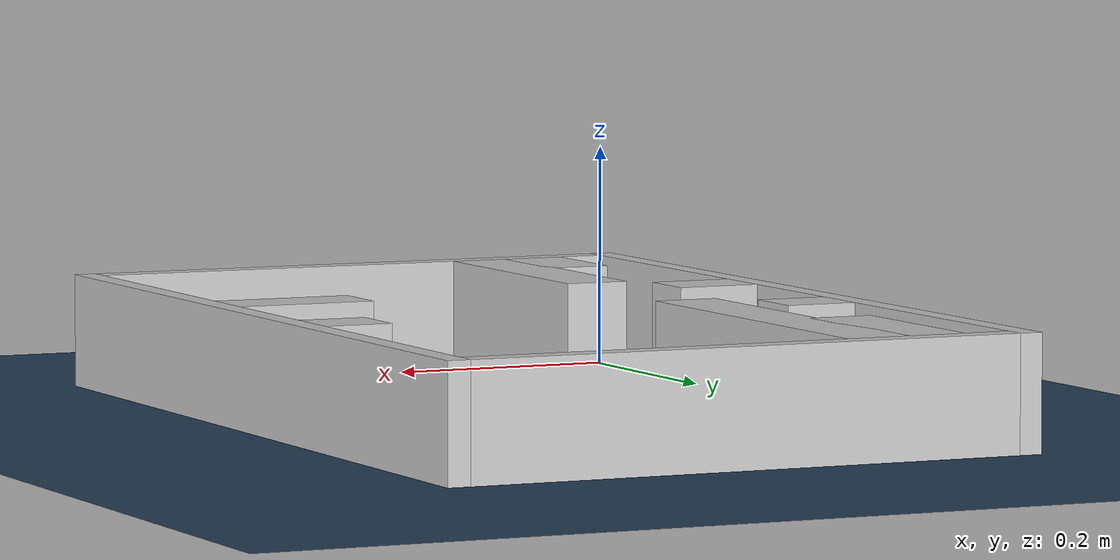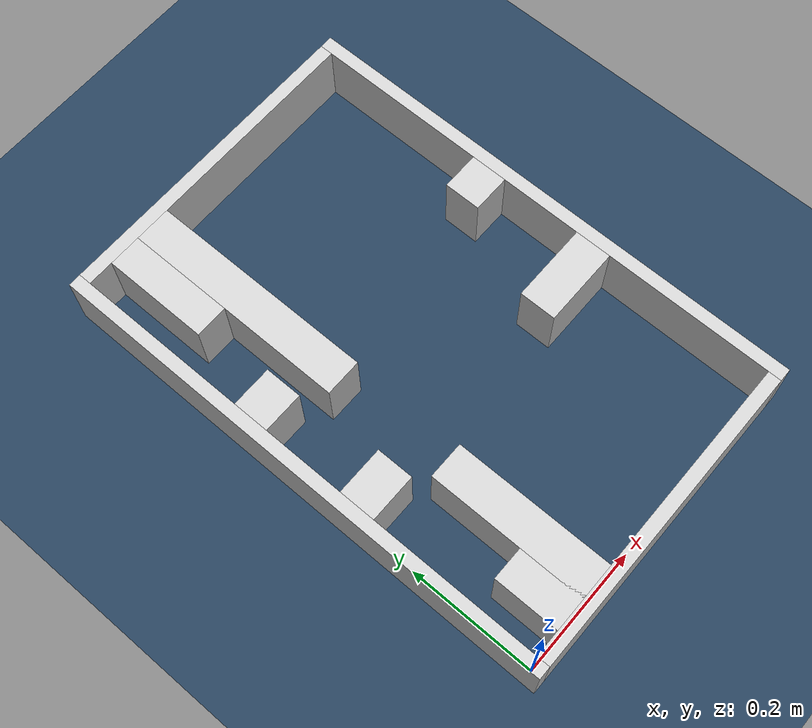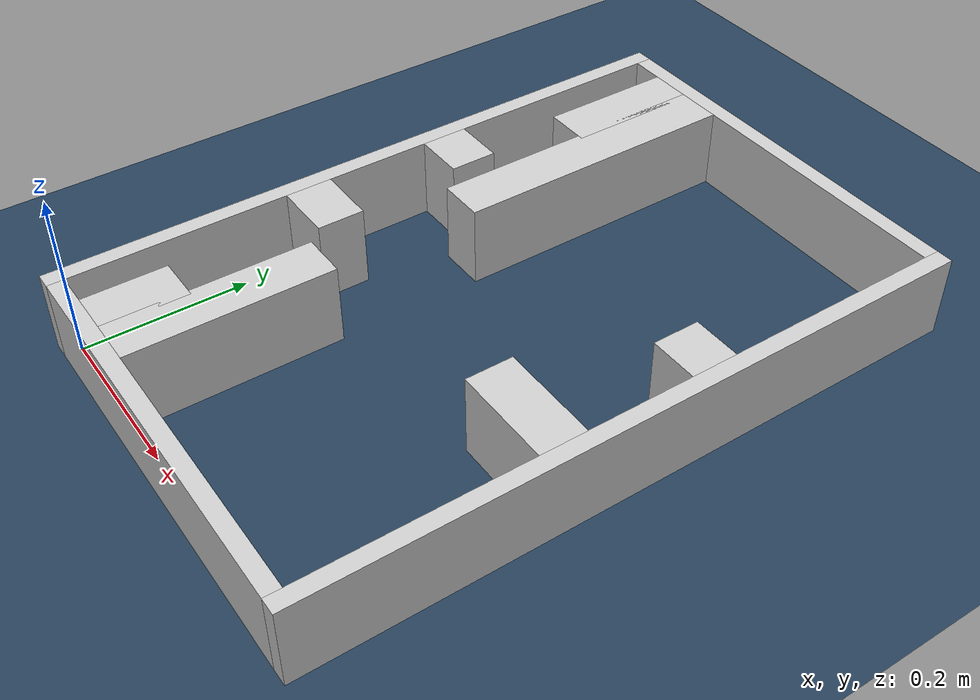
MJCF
<?xml version="1.0" ?>
<mujoco model="generated_real_template">
  <compiler angle="degree"/>
  <option timestep="0.002" integrator="implicitfast" iterations="100" cone="elliptic"/>
  <default>
    <geom density="1"/>
  </default>
  <asset>
    <texture builtin="gradient" height="3072" rgb1="0.3 0.5 0.7" rgb2="0 0 0" type="skybox" width="512"/>
    <texture builtin="checker" height="300" mark="edge" markrgb="0.8 0.8 0.8" name="groundplane" rgb1="0.2 0.3 0.4" rgb2="0.1 0.2 0.3" type="2d" width="300"/>
    <material name="groundplane" reflectance="0.2" texrepeat="5 5" texture="groundplane" texuniform="true"/>
  </asset>
  <worldbody>
    <light dir="0 0 -1" directional="true" pos="0 0 1.5"/>
    <geom name="floor" type="plane" condim="4" friction="0.5 0.005 0.001" material="groundplane" size="0 0 0.05"/>
    <body name="walls">
      <geom name="wall_boundary_left" type="box" condim="4" friction="1.0 0.005 0.0001" rgba="0.8 0.8 0.8 1" pos="-0.010000 0.387500 0.050000" euler="0 0 0.000000" size="0.010000 0.407500 0.050000"/>
      <geom name="wall_boundary_right" type="box" condim="4" friction="1.0 0.005 0.0001" rgba="0.8 0.8 0.8 1" pos="0.500000 0.387500 0.050000" euler="0 0 0.000000" size="0.010000 0.407500 0.050000"/>
      <geom name="wall_boundary_bottom" type="box" condim="4" friction="1.0 0.005 0.0001" rgba="0.8 0.8 0.8 1" pos="0.245000 -0.010000 0.050000" euler="0 0 0.000000" size="0.245000 0.010000 0.050000"/>
      <geom name="wall_boundary_top" type="box" condim="4" friction="1.0 0.005 0.0001" rgba="0.8 0.8 0.8 1" pos="0.245000 0.785000 0.050000" euler="0 0 0.000000" size="0.245000 0.010000 0.050000"/>
      <geom name="wall_inner_1_1" type="box" condim="4" friction="1.0 0.005 0.0001" rgba="0.8 0.8 0.8 1" pos="0.119670 0.122824 0.050000" euler="0 0 90.000000" size="0.122824 0.028500 0.050000"/>
      <geom name="wall_inner_1_2" type="box" condim="4" friction="1.0 0.005 0.0001" rgba="0.8 0.8 0.8 1" pos="0.119670 0.598189 0.050000" euler="0 0 90.000000" size="0.176811 0.028500 0.050000"/>
      <geom name="wall_inner_2_1" type="box" condim="4" friction="1.0 0.005 0.0001" rgba="0.8 0.8 0.8 1" pos="0.037212 0.292100 0.050000" euler="0 0 0.000000" size="0.037212 0.028500 0.050000"/>
      <geom name="wall_inner_2_2" type="box" condim="4" friction="1.0 0.005 0.0001" rgba="0.8 0.8 0.8 1" pos="0.428439 0.292100 0.050000" euler="0 0 0.000000" size="0.061561 0.028500 0.050000"/>
      <geom name="wall_inner_3_1" type="box" condim="4" friction="1.0 0.005 0.0001" rgba="0.8 0.8 0.8 1" pos="0.068887 0.050031 0.050000" euler="0 0 90.000000" size="0.050031 0.028500 0.050000"/>
      <geom name="wall_inner_3_2" type="box" condim="4" friction="1.0 0.005 0.0001" rgba="0.8 0.8 0.8 1" pos="0.068887 0.692667 0.050000" euler="0 0 90.000000" size="0.082333 0.028500 0.050000"/>
      <geom name="wall_inner_4_1" type="box" condim="4" friction="1.0 0.005 0.0001" rgba="0.8 0.8 0.8 1" pos="0.031819 0.476958 0.050000" euler="0 0 0.000000" size="0.031819 0.028500 0.050000"/>
      <geom name="wall_inner_4_2" type="box" condim="4" friction="1.0 0.005 0.0001" rgba="0.8 0.8 0.8 1" pos="0.460239 0.476958 0.050000" euler="0 0 0.000000" size="0.029761 0.028500 0.050000"/>
    </body>
  </worldbody>
</mujoco>
